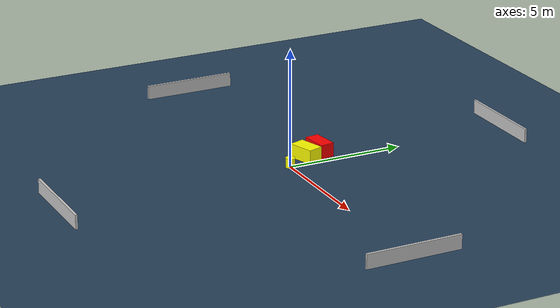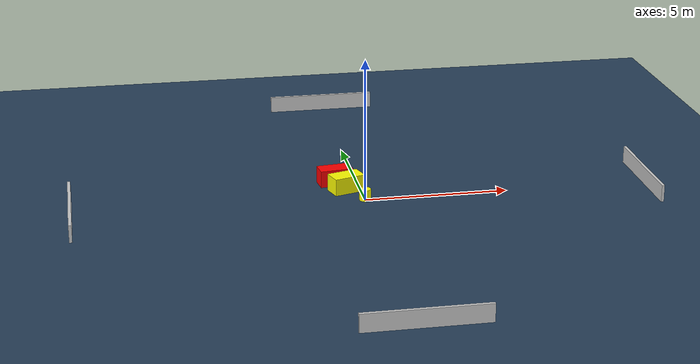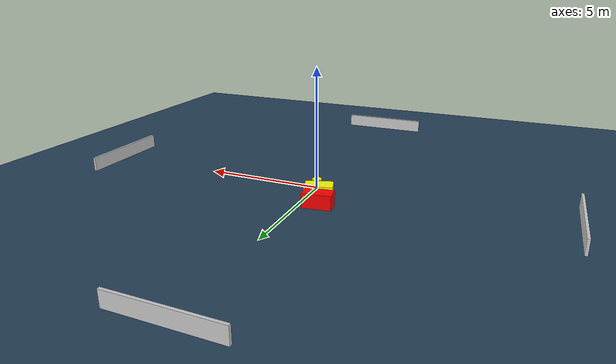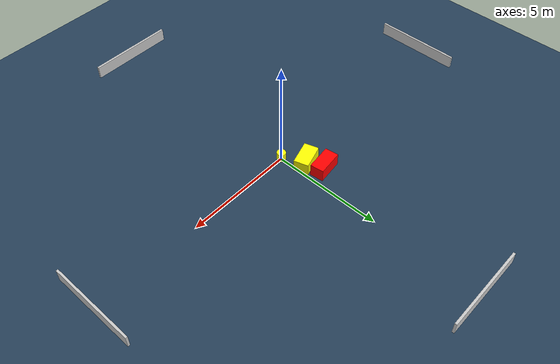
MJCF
<?xml version="1.0" ?>
<mujoco model="generated_environment">
  <option timestep="0.01" integrator="RK4" cone="elliptic"/>
  <default>
    <geom density="1"/>
  </default>
  <asset>
    <texture builtin="gradient" height="3072" name="skybox" rgb1="0.3 0.5 0.7" rgb2="0 0 0" type="skybox" width="512"/>
    <texture builtin="checker" height="300" name="groundplane" rgb1="0.2 0.3 0.4" rgb2="0.1 0.2 0.3" type="2d" width="300"/>
    <material name="groundplane" reflectance="0.2" texrepeat="5 5" texture="groundplane"/>
  </asset>
  <worldbody>
    <light dir="0 0 -1" directional="true" pos="0 0 1.5"/>
    <geom condim="3" friction="0.5 0.005 0.001" material="groundplane" name="floor" pos="0 0 0" size="0 0 0.05" type="plane"/>
    <body name="walls">
      <geom name="wall_1" condim="4" pos="-10.0 0.0 0.3" rgba="0.800000011920929 0.800000011920929 0.800000011920929 1.0" size="0.05 2.0 0.3" type="box"/>
      <geom name="wall_2" condim="4" pos="10.0 0.0 0.3" rgba="0.800000011920929 0.800000011920929 0.800000011920929 1.0" size="0.05 2.0 0.3" type="box"/>
      <geom name="wall_3" condim="4" pos="0.0 -10.0 0.3" rgba="0.800000011920929 0.800000011920929 0.800000011920929 1.0" size="2.0 0.05 0.3" type="box"/>
      <geom name="wall_4" condim="4" pos="0.0 10.0 0.3" rgba="0.800000011920929 0.800000011920929 0.800000011920929 1.0" size="2.0 0.05 0.3" type="box"/>
    </body>
    <body name="robot">
      <joint name="joint_x" type="slide" pos="0 0 0" axis="1 0 0"/>
      <joint name="joint_y" type="slide" pos="0 0 0" axis="0 1 0"/>
      <geom name="robot" type="cylinder" pos="0.0 0.0 0.2" size="0.2 0.2 0.0" mass="5.0" friction="1.0 0.005 0.0001" condim="4" rgba="1.0 1.0 0.0 1.0"/>
    </body>
    <body name="obstacle_1_movable">
      <geom name="obstacle_1_movable" condim="4" pos="-0.49325890299817393 0.9781186041347119 0.3" euler="0 0 197.22852226363224" friction="0.0 0.005 0.001" rgba="1.0 1.0 0.0 1.0" size="0.5612298251526385 0.3303518952248058 0.3" type="box" mass="0.1"/>
      <joint type="free"/>
    </body>
    <body name="obstacle_2_static">
      <geom name="obstacle_2_static" condim="4" pos="-0.7719480558936896 1.7396160236456886 0.3" euler="0 0 187.0711815215292" friction="0.0 0.005 0.001" rgba="1.0 0.0 0.0 1.0" size="0.5833780691337597 0.30640984880602296 0.3" type="box"/>
    </body>
  </worldbody>
  <actuator>
    <motor name="actuator_x" joint="joint_x" gear="1" ctrlrange="-1 1"/>
    <motor name="actuator_y" joint="joint_y" gear="1" ctrlrange="-1 1"/>
  </actuator>
</mujoco>
